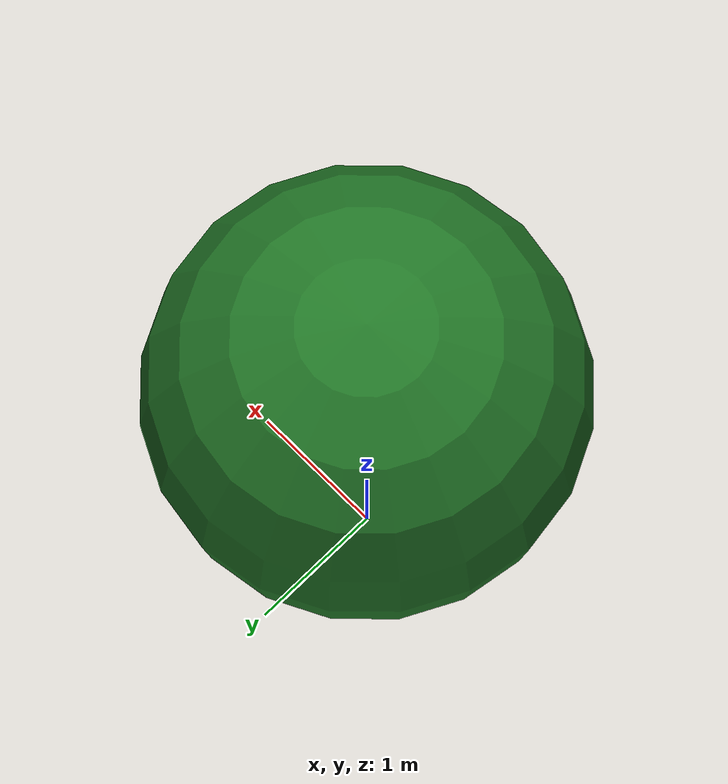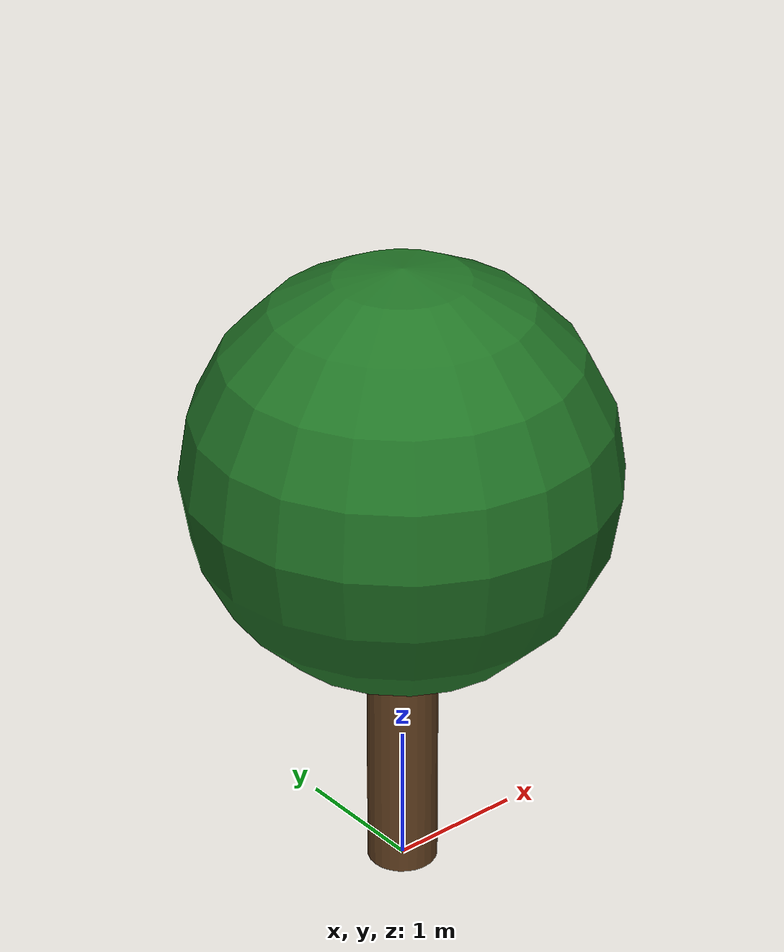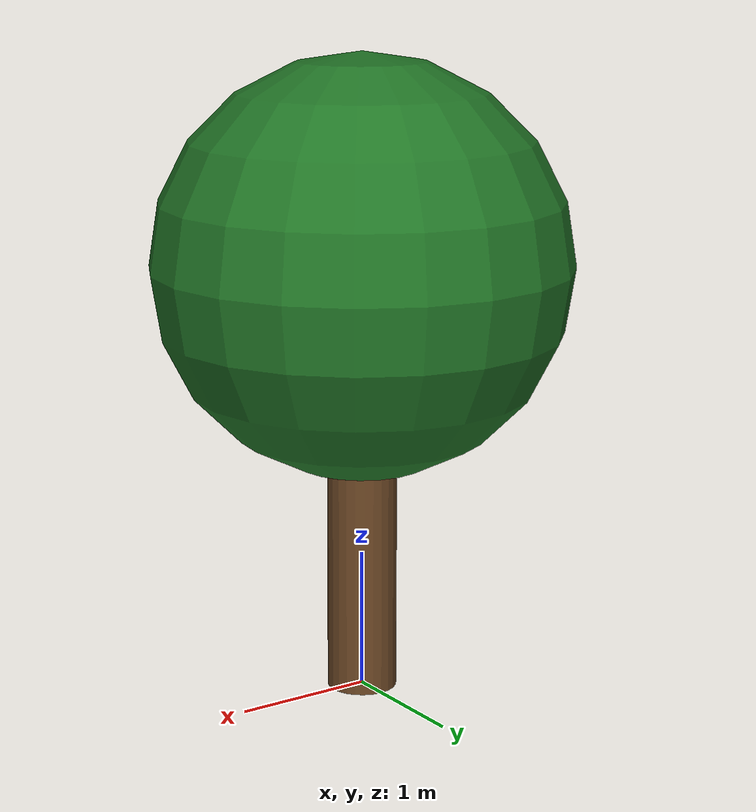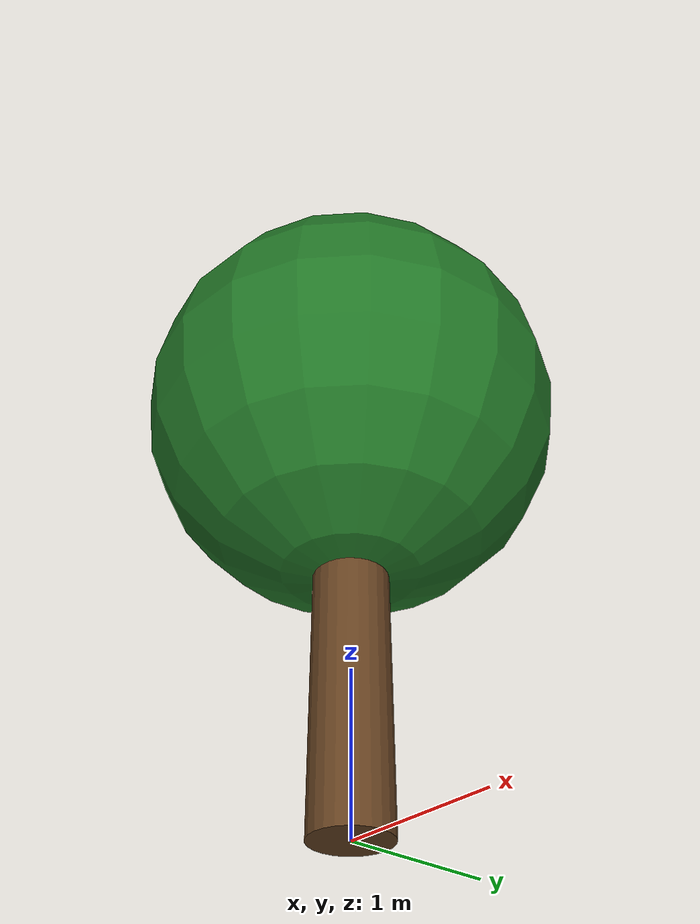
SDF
<?xml version="1.0" ?>
<!-- Primitive tree: brown cylinder trunk + green sphere canopy (~4.5 m tall).
     Static scenery placed OUTSIDE the 60 m field so it never obstructs the
     flight corridor, targets, or landings. -->
<sdf version="1.9">
  <model name="tree">
    <static>true</static>
    <link name="link">
      <visual name="trunk">
        <pose>0 0 1.0 0 0 0</pose>
        <geometry>
          <cylinder><radius>0.25</radius><length>2.0</length></cylinder>
        </geometry>
        <material>
          <ambient>0.34 0.22 0.11 1</ambient>
          <diffuse>0.40 0.26 0.13 1</diffuse>
        </material>
      </visual>
      <visual name="canopy">
        <pose>0 0 3.1 0 0 0</pose>
        <geometry>
          <sphere><radius>1.5</radius></sphere>
        </geometry>
        <material>
          <ambient>0.10 0.34 0.12 1</ambient>
          <diffuse>0.13 0.46 0.15 1</diffuse>
        </material>
      </visual>
      <collision name="trunk_col">
        <pose>0 0 1.0 0 0 0</pose>
        <geometry>
          <cylinder><radius>0.3</radius><length>2.0</length></cylinder>
        </geometry>
      </collision>
    </link>
  </model>
</sdf>
